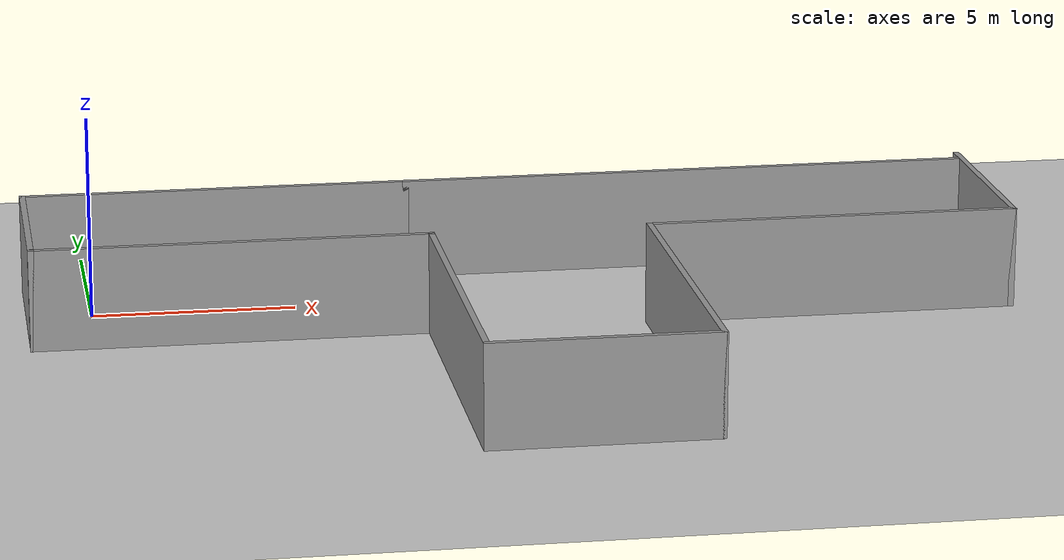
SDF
<sdf version="1.7">
 <world name="lab_world">
  <gravity>0 0 -9.8</gravity>
  <model name="ground_plane">
   <static>1</static>
   <link name="link">
    <collision name="collision">
     <geometry><plane><normal>0 0 1</normal><size>100 100</size></plane></geometry>
     <surface><friction><ode><mu>100</mu><mu2>50</mu2></ode></friction></surface>
    </collision>
    <visual name="visual">
     <cast_shadows>0</cast_shadows>
     <geometry><plane><normal>0 0 1</normal><size>100 100</size></plane></geometry>
     <material>
      <script><uri>file://media/materials/scripts/gazebo.material</uri><name>Gazebo/Grey</name></script>
     </material>
    </visual>
   </link>
  </model>
  <light name="sun" type="directional">
   <pose>0 0 10 0 -0 0</pose>
   <diffuse>0.8 0.8 0.8 1</diffuse>
   <specular>0.2 0.2 0.2 1</specular>
   <attenuation>
    <range>1000</range>
    <constant>0.9</constant>
    <linear>0.01</linear>
    <quadratic>0.001</quadratic>
   </attenuation>
   <direction>-0.5 0.1 -0.9</direction>
   <spot><inner_angle>0</inner_angle><outer_angle>0</outer_angle><falloff>0</falloff></spot>
  </light>
  <magnetic_field>6e-06 2.3e-05 -4.2e-05</magnetic_field>
  <atmosphere type="adiabatic"/>
  <physics type="ode">
   <max_step_size>0.001</max_step_size>
   <real_time_factor>1</real_time_factor>
   <real_time_update_rate>1000</real_time_update_rate>
  </physics>
  <scene><ambient>0.4 0.4 0.4 1</ambient><background>0.7 0.7 0.7 1</background><shadows>1</shadows></scene>
  <spherical_coordinates>
   <surface_model>EARTH_WGS84</surface_model>
   <latitude_deg>0</latitude_deg>
   <longitude_deg>0</longitude_deg>
   <elevation>0</elevation>
   <heading_deg>0</heading_deg>
  </spherical_coordinates>
  <model name="place1">
   <pose>10.4908 -4.30721 0 0 -0 0</pose>
   <link name="Wall_10">
    <collision name="Wall_10_Collision">
     <geometry><box><size>9 0.15 2.5</size></box></geometry>
     <pose>0 0 1.25 0 -0 0</pose>
    </collision>
    <visual name="Wall_10_Visual">
     <pose>0 0 1.25 0 -0 0</pose>
     <geometry><box><size>9 0.15 2.5</size></box></geometry>
     <material>
      <script><uri>file://media/materials/scripts/gazebo.material</uri><name>Gazebo/Grey</name></script>
      <ambient>1 1 1 1</ambient>
     </material>
     <meta><layer>0</layer></meta>
    </visual>
    <pose>2.925 -2.675 0 0 -0 1.5708</pose>
   </link>
   <link name="Wall_11">
    <collision name="Wall_11_Collision">
     <geometry><box><size>9.25 0.15 2.5</size></box></geometry>
     <pose>0 0 1.25 0 -0 0</pose>
    </collision>
    <visual name="Wall_11_Visual">
     <pose>0 0 1.25 0 -0 0</pose>
     <geometry><box><size>9.25 0.15 2.5</size></box></geometry>
     <material>
      <script><uri>file://media/materials/scripts/gazebo.material</uri><name>Gazebo/Grey</name></script>
      <ambient>1 1 1 1</ambient>
     </material>
     <meta><layer>0</layer></meta>
    </visual>
    <pose>7.475 1.75 0 0 -0 0</pose>
   </link>
   <link name="Wall_12">
    <collision name="Wall_12_Collision">
     <geometry><box><size>5.5 0.15 2.5</size></box></geometry>
     <pose>0 0 1.25 0 -0 0</pose>
    </collision>
    <visual name="Wall_12_Visual">
     <pose>0 0 1.25 0 -0 0</pose>
     <geometry><box><size>5.5 0.15 2.5</size></box></geometry>
     <material>
      <script><uri>file://media/materials/scripts/gazebo.material</uri><name>Gazebo/Grey</name></script>
      <ambient>1 1 1 1</ambient>
     </material>
     <meta><layer>0</layer></meta>
    </visual>
    <pose>12.025 4.425 0 0 -0 1.5708</pose>
   </link>
   <link name="Wall_14">
    <collision name="Wall_14_Collision">
     <geometry><box><size>14.5 0.15 2.5</size></box></geometry>
     <pose>0 0 1.25 0 -0 0</pose>
    </collision>
    <visual name="Wall_14_Visual">
     <pose>0 0 1.25 0 -0 0</pose>
     <geometry><box><size>14.5 0.15 2.5</size></box></geometry>
     <material>
      <script><uri>file://media/materials/scripts/gazebo.material</uri><name>Gazebo/Grey</name></script>
      <ambient>1 1 1 1</ambient>
     </material>
     <meta><layer>0</layer></meta>
    </visual>
    <pose>4.75 6.6 0 0 -0 0</pose>
   </link>
   <link name="Wall_3">
    <collision name="Wall_3_Collision">
     <geometry><box><size>5 0.15 2.5</size></box></geometry>
     <pose>0 0 1.25 0 -0 0</pose>
    </collision>
    <visual name="Wall_3_Visual">
     <pose>0 0 1.25 0 -0 0</pose>
     <geometry><box><size>5 0.15 2.5</size></box></geometry>
     <material>
      <script><uri>file://media/materials/scripts/gazebo.material</uri><name>Gazebo/Grey</name></script>
      <ambient>1 1 1 1</ambient>
     </material>
     <meta><layer>0</layer></meta>
    </visual>
    <pose>-12.025 4.175 0 0 -0 1.5708</pose>
   </link>
   <link name="Wall_5">
    <collision name="Wall_5_Collision">
     <geometry><box><size>9.75 0.15 2.5</size></box></geometry>
     <pose>0 0 1.25 0 -0 0</pose>
    </collision>
    <visual name="Wall_5_Visual">
     <pose>0 0 1.25 0 -0 0</pose>
     <geometry><box><size>9.75 0.15 2.5</size></box></geometry>
     <material>
      <script><uri>file://media/materials/scripts/gazebo.material</uri><name>Gazebo/Grey</name></script>
      <ambient>1 1 1 1</ambient>
     </material>
     <meta><layer>0</layer></meta>
    </visual>
    <pose>-7.225 6.6 0 0 -0 0</pose>
   </link>
   <link name="Wall_7">
    <collision name="Wall_7_Collision">
     <geometry><box><size>9.75 0.15 2.5</size></box></geometry>
     <pose>0 0 1.25 0 -0 0</pose>
    </collision>
    <visual name="Wall_7_Visual">
     <pose>0 0 1.25 0 -0 0</pose>
     <geometry><box><size>9.75 0.15 2.5</size></box></geometry>
     <material>
      <script><uri>file://media/materials/scripts/gazebo.material</uri><name>Gazebo/Grey</name></script>
      <ambient>1 1 1 1</ambient>
     </material>
     <meta><layer>0</layer></meta>
    </visual>
    <pose>-7.225 1.75 0 0 -0 0</pose>
   </link>
   <link name="Wall_8">
    <collision name="Wall_8_Collision">
     <geometry><box><size>9 0.15 2.5</size></box></geometry>
     <pose>0 0 1.25 0 -0 0</pose>
    </collision>
    <visual name="Wall_8_Visual">
     <pose>0 0 1.25 0 -0 0</pose>
     <geometry><box><size>9 0.15 2.5</size></box></geometry>
     <material>
      <script><uri>file://media/materials/scripts/gazebo.material</uri><name>Gazebo/Grey</name></script>
      <ambient>1 1 1 1</ambient>
     </material>
     <meta><layer>0</layer></meta>
    </visual>
    <pose>-2.425 -2.675 0 0 -0 -1.5708</pose>
   </link>
   <link name="Wall_9">
    <collision name="Wall_9_Collision">
     <geometry><box><size>5.5 0.15 2.5</size></box></geometry>
     <pose>0 0 1.25 0 -0 0</pose>
    </collision>
    <visual name="Wall_9_Visual">
     <pose>0 0 1.25 0 -0 0</pose>
     <geometry><box><size>5.5 0.15 2.5</size></box></geometry>
     <material>
      <script><uri>file://media/materials/scripts/gazebo.material</uri><name>Gazebo/Grey</name></script>
      <ambient>1 1 1 1</ambient>
     </material>
     <meta><layer>0</layer></meta>
    </visual>
    <pose>0.249999 -7.1 0 0 -0 0</pose>
   </link>
   <static>1</static>
  </model>
 </world>
</sdf>
